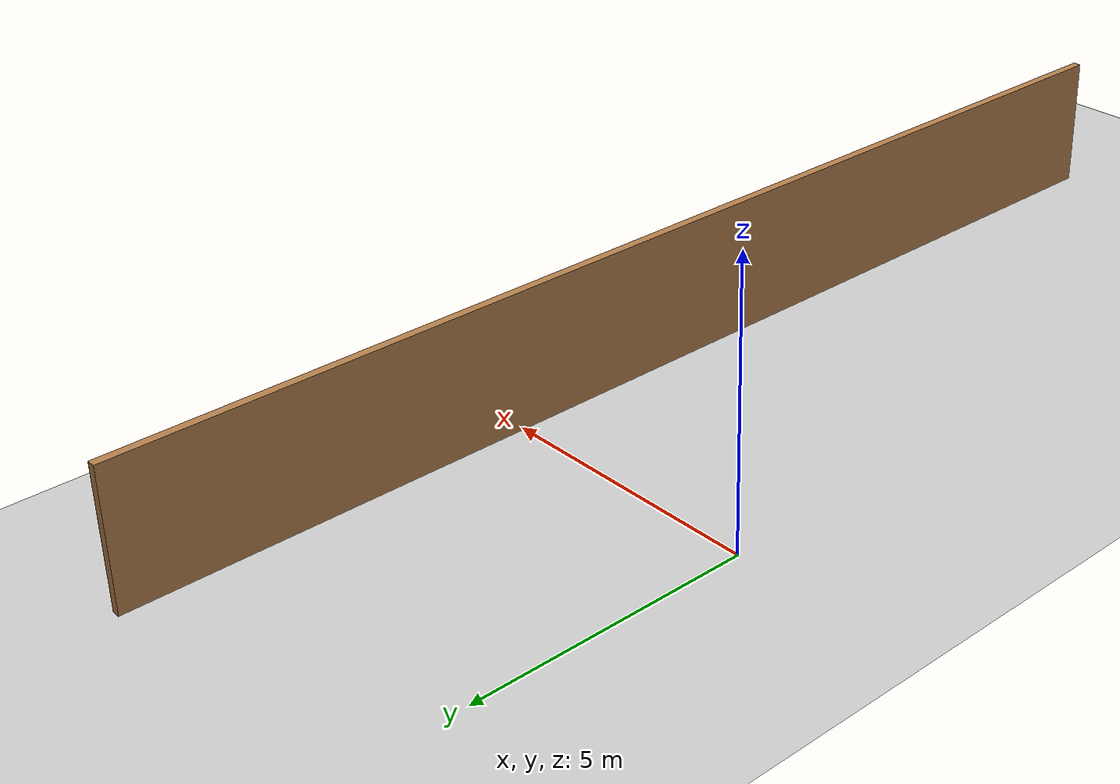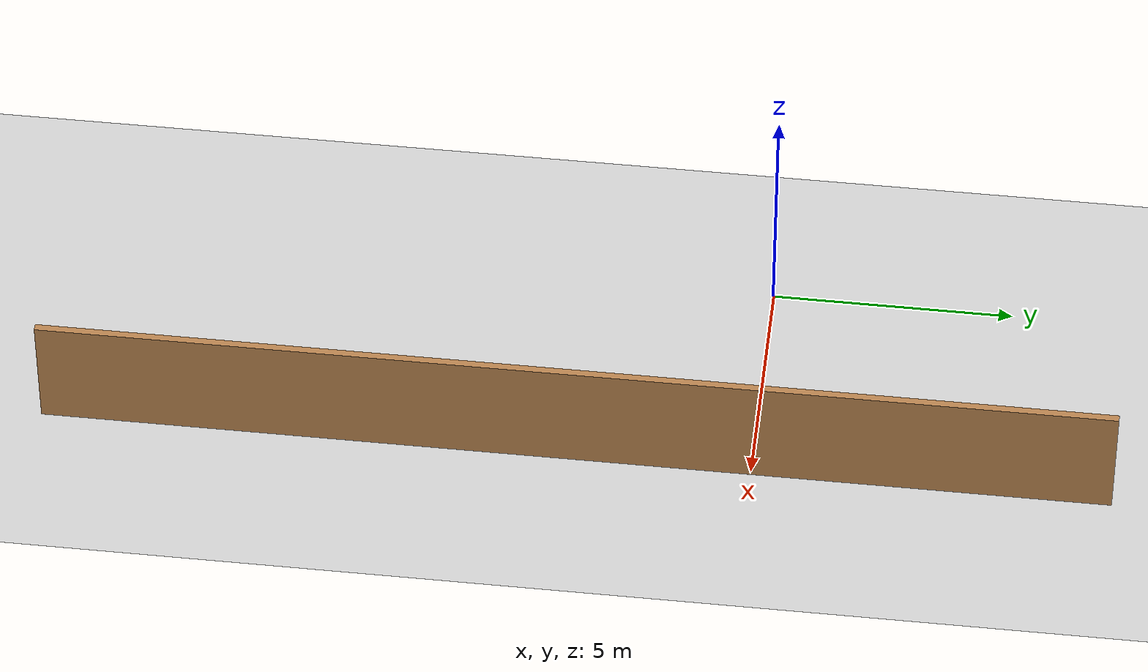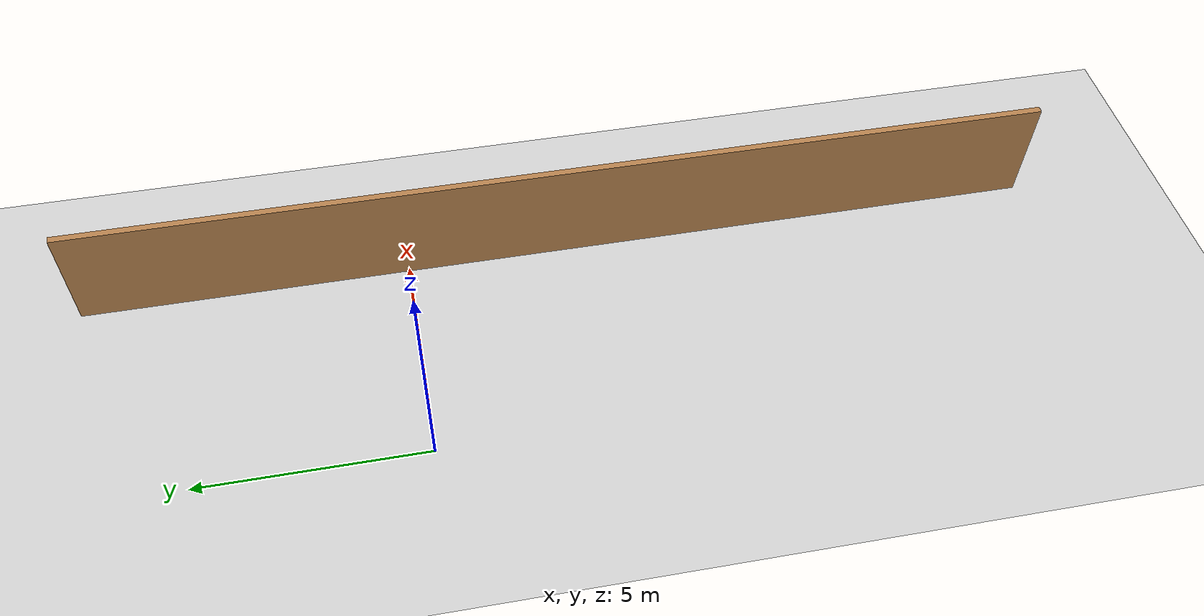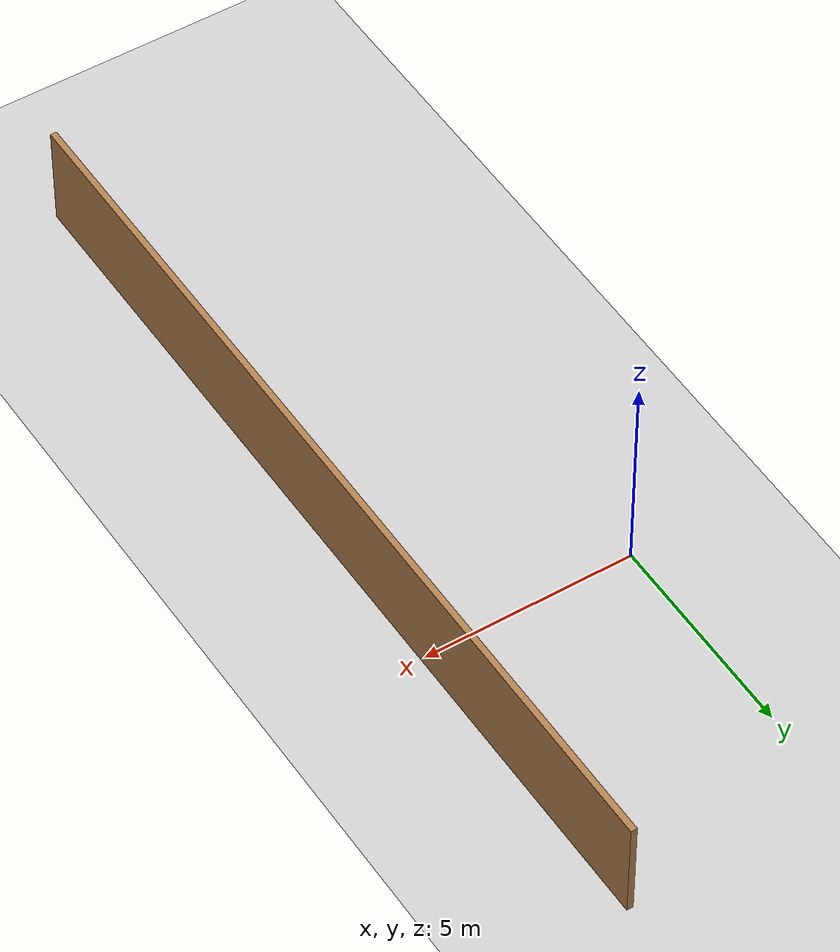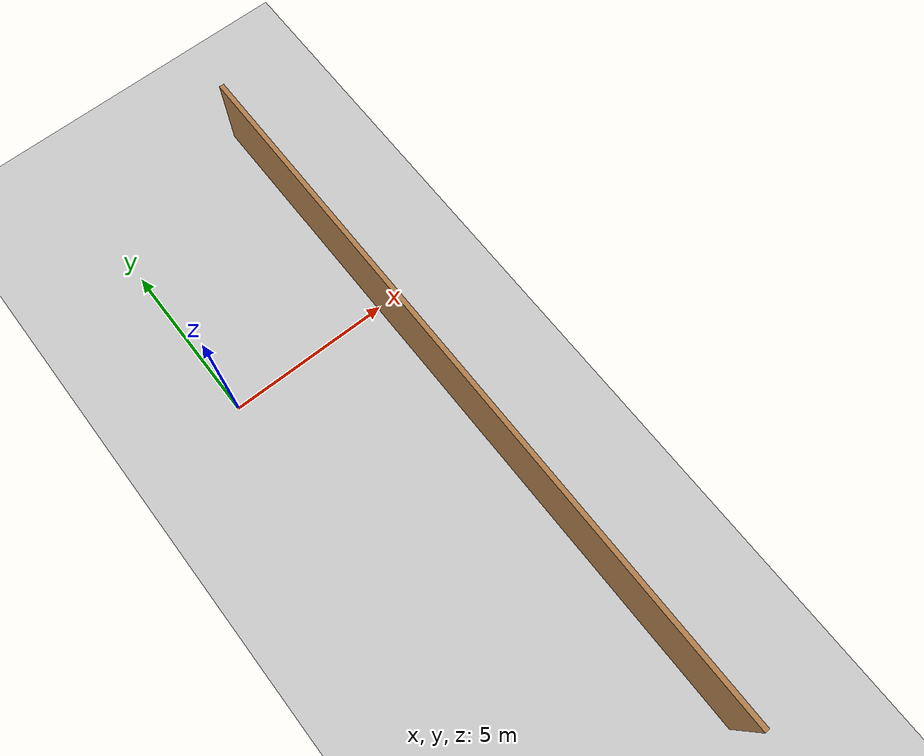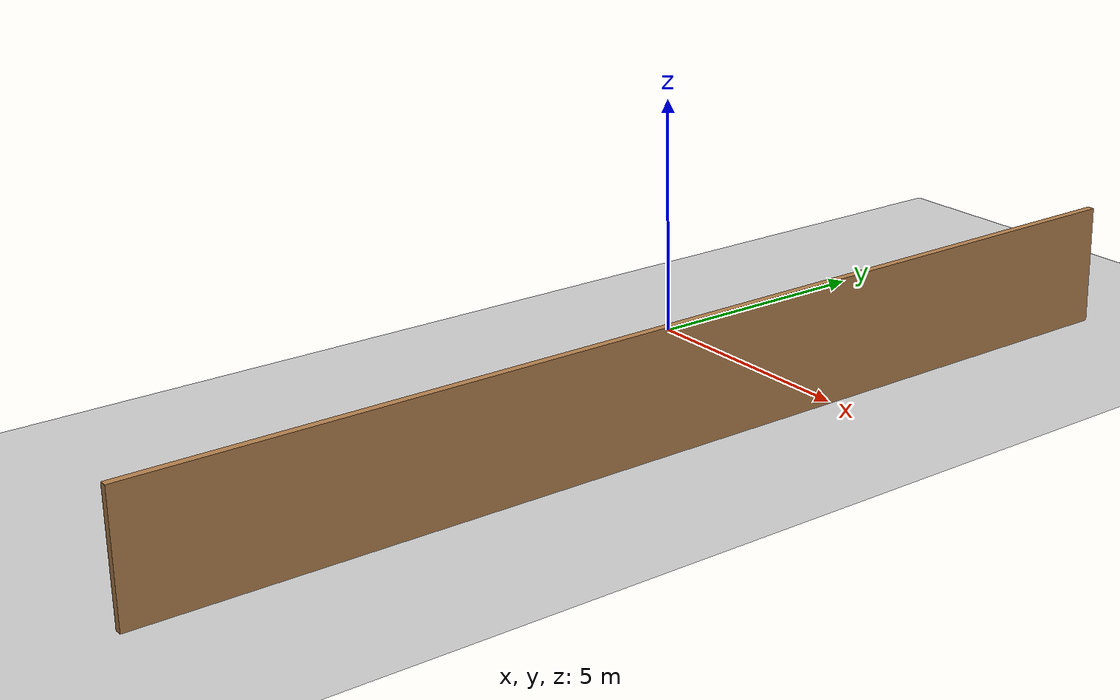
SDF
<sdf version="1.6">
 <world name="default">
  <model name="ground_plane">
   <static>1</static>
   <link name="link">
    <collision name="collision">
     <geometry><plane><normal>0 0 1</normal><size>100 100</size></plane></geometry>
     <surface>
      <contact><collide_bitmask>65535</collide_bitmask></contact>
      <friction><ode><mu>100</mu><mu2>50</mu2></ode></friction>
     </surface>
    </collision>
    <visual name="visual">
     <cast_shadows>0</cast_shadows>
     <geometry><plane><normal>0 0 1</normal><size>100 100</size></plane></geometry>
     <material>
      <script><uri>file://media/materials/scripts/gazebo.material</uri><name>Gazebo/Grey</name></script>
     </material>
    </visual>
   </link>
  </model>
  <model name="over22mWall">
   <pose>5.01231 -3.64171 0 0 -0 0</pose>
   <link name="Wall_2">
    <collision name="Wall_2_Collision">
     <geometry><box><size>22 0.15 2.5</size></box></geometry>
     <pose>0 0 1.25 0 -0 0</pose>
    </collision>
    <visual name="Wall_2_Visual">
     <pose>0 0 1.25 0 -0 0</pose>
     <geometry><box><size>22 0.15 2.5</size></box></geometry>
     <material>
      <script><uri>file://media/materials/scripts/gazebo.material</uri><name>Gazebo/Wood</name></script>
      <ambient>1 1 1 1</ambient>
     </material>
     <meta><layer>0</layer></meta>
    </visual>
    <pose>0 0 0 0 -0 -1.5708</pose>
   </link>
   <static>1</static>
  </model>
 </world>
</sdf>
